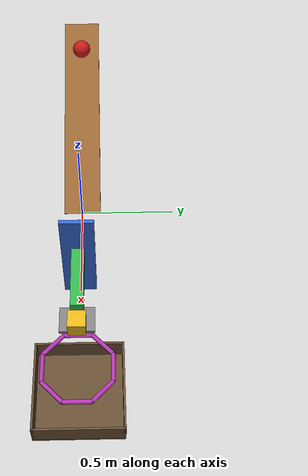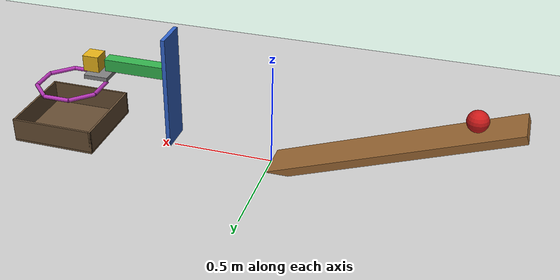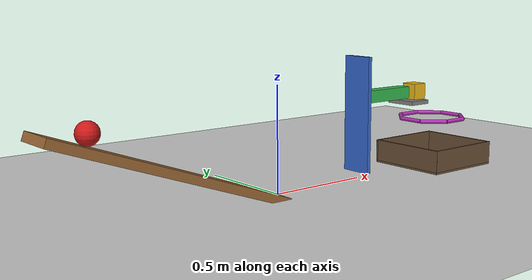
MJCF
<mujoco model="ball_ramp_paddle_slider_block">
  <option timestep="0.002"/>
  <worldbody>
    <light name="sun" pos="0.5 -1 3" dir="0 0.3 -1" diffuse="0.8 0.8 0.8"/>
    <geom name="floor" type="plane" size="3 3 0.1" rgba="0.8 0.8 0.8 1"/>

    <body name="ramp" pos="-0.5706 0 0.1864" euler="0 20 0">
      <geom name="ramp_deck" type="box" size="0.6 0.1 0.02" rgba="0.6 0.4 0.2 1"/>
    </body>

    <body name="ball" pos="-0.9226 0 0.3890">
      <freejoint name="ball_free"/>
      <geom name="ball_geom" type="sphere" size="0.05" mass="0.5" friction="0.5 0.005 0.002" condim="6" rgba="0.8 0.1 0.1 1"/>
    </body>

    <body name="paddle" pos="0.5 0 0.6">
      <joint name="paddle_hinge" type="hinge" axis="0 1 0" pos="0 0 0" damping="0.005"/>
      <geom name="paddle_plate" type="box" size="0.01 0.08 0.2825" pos="0 0 -0.2825" mass="0.2" rgba="0.2 0.4 0.8 1"/>
    </body>

    <body name="slider" pos="0.68 0 0.40">
      <joint name="slider_slide" type="slide" axis="1 0 0" limited="true" range="0 0.14"/>
      <geom name="slider_bar" type="box" size="0.15 0.03 0.03" mass="0.1" friction="0.1" rgba="0.2 0.7 0.3 1"/>
    </body>

    <body name="ledge" pos="0.86 0 0.35">
      <geom name="ledge_shelf" type="box" size="0.06 0.08 0.01" friction="0.15" rgba="0.5 0.5 0.5 1"/>
    </body>

    <body name="block" pos="0.90 0 0.40">
      <freejoint name="block_free"/>
      <geom name="block_geom" type="box" size="0.04 0.04 0.04" mass="0.1" friction="0.15" rgba="0.9 0.7 0.1 1"/>
    </body>

    <body name="hoop" pos="1.04 0 0.25">
      <geom name="hoop_s0" type="capsule" size="0.01" fromto="0.1571 0.0651 0 0.0651 0.1571 0" rgba="0.7 0.2 0.7 1"/>
      <geom name="hoop_s1" type="capsule" size="0.01" fromto="0.0651 0.1571 0 -0.0651 0.1571 0" rgba="0.7 0.2 0.7 1"/>
      <geom name="hoop_s2" type="capsule" size="0.01" fromto="-0.0651 0.1571 0 -0.1571 0.0651 0" rgba="0.7 0.2 0.7 1"/>
      <geom name="hoop_s3" type="capsule" size="0.01" fromto="-0.1571 0.0651 0 -0.1571 -0.0651 0" rgba="0.7 0.2 0.7 1"/>
      <geom name="hoop_s4" type="capsule" size="0.01" fromto="-0.1571 -0.0651 0 -0.0651 -0.1571 0" rgba="0.7 0.2 0.7 1"/>
      <geom name="hoop_s5" type="capsule" size="0.01" fromto="-0.0651 -0.1571 0 0.0651 -0.1571 0" rgba="0.7 0.2 0.7 1"/>
      <geom name="hoop_s6" type="capsule" size="0.01" fromto="0.0651 -0.1571 0 0.1571 -0.0651 0" rgba="0.7 0.2 0.7 1"/>
      <geom name="hoop_s7" type="capsule" size="0.01" fromto="0.1571 -0.0651 0 0.1571 0.0651 0" rgba="0.7 0.2 0.7 1"/>
    </body>

    <body name="box" pos="1.06 0 0">
      <geom name="box_bottom" type="box" size="0.21 0.21 0.005" pos="0 0 0.005" rgba="0.4 0.3 0.2 1"/>
      <geom name="box_wall_left" type="box" size="0.005 0.21 0.055" pos="-0.205 0 0.065" rgba="0.4 0.3 0.2 1"/>
      <geom name="box_wall_right" type="box" size="0.005 0.21 0.055" pos="0.205 0 0.065" rgba="0.4 0.3 0.2 1"/>
      <geom name="box_wall_front" type="box" size="0.21 0.005 0.055" pos="0 -0.205 0.065" rgba="0.4 0.3 0.2 1"/>
      <geom name="box_wall_back" type="box" size="0.21 0.005 0.055" pos="0 0.205 0.065" rgba="0.4 0.3 0.2 1"/>
    </body>
  </worldbody>

  <keyframe>
    <key name="start" qpos="-0.9226 0 0.3890 1 0 0 0  0  0  0.90 0 0.40 1 0 0 0"/>
  </keyframe>
</mujoco>
